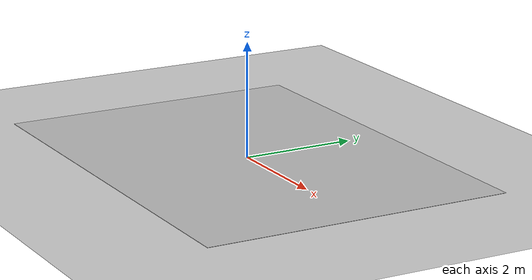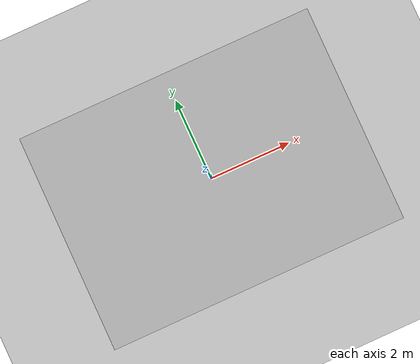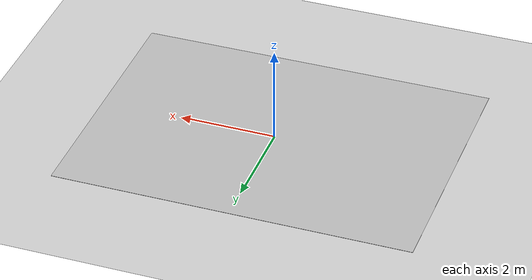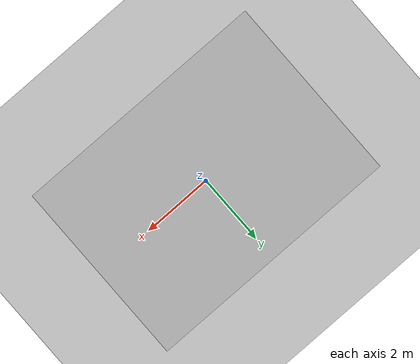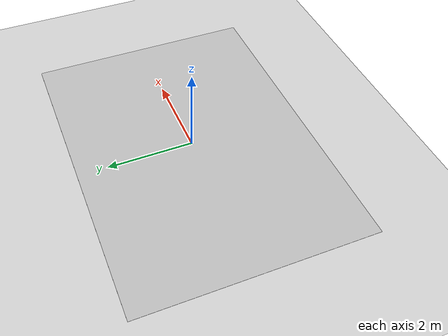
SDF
<sdf version="1.7">
 <world name="default">
  <physics name="default_physics" default="0" type="ode">
   <max_step_size>0.001</max_step_size>
   <real_time_factor>1</real_time_factor>
   <real_time_update_rate>1000</real_time_update_rate>
   <ode>
    <solver>
     <type>quick</type>
     <iters>50</iters>
     <sor>1</sor>
     <use_dynamic_moi_rescaling>0</use_dynamic_moi_rescaling>
    </solver>
    <constraints>
     <cfm>0</cfm>
     <erp>0.2</erp>
     <contact_max_correcting_vel>100</contact_max_correcting_vel>
     <contact_surface_layer>0.001</contact_surface_layer>
    </constraints>
   </ode>
  </physics>
  <model name="ground_plane">
   <static>1</static>
   <link name="link">
    <collision name="collision">
     <geometry><plane><normal>0 0 1</normal><size>100 100</size></plane></geometry>
     <surface><friction><ode><mu>100</mu><mu2>50</mu2></ode></friction></surface>
    </collision>
    <visual name="visual">
     <cast_shadows>0</cast_shadows>
     <geometry><plane><normal>0 0 1</normal><size>100 100</size></plane></geometry>
     <material>
      <script><uri>file://media/materials/scripts/gazebo.material</uri><name>Gazebo/Grey</name></script>
     </material>
    </visual>
   </link>
  </model>
  <light name="sun" type="directional">
   <pose>0 0 10 0 -0 0</pose>
   <diffuse>0.8 0.8 0.8 1</diffuse>
   <specular>0.2 0.2 0.2 1</specular>
   <attenuation>
    <range>1000</range>
    <constant>0.9</constant>
    <linear>0.01</linear>
    <quadratic>0.001</quadratic>
   </attenuation>
   <direction>-0.5 0.1 -0.9</direction>
   <spot><inner_angle>0</inner_angle><outer_angle>0</outer_angle><falloff>0</falloff></spot>
  </light>
  <gravity>0 0 -9.8</gravity>
  <magnetic_field>6e-06 2.3e-05 -4.2e-05</magnetic_field>
  <atmosphere type="adiabatic"/>
  <scene><ambient>0.4 0.4 0.4 1</ambient><background>0.7 0.7 0.7 1</background><shadows>1</shadows></scene>
  <audio><device>default</device></audio>
  <spherical_coordinates>
   <surface_model>EARTH_WGS84</surface_model>
   <latitude_deg>0</latitude_deg>
   <longitude_deg>0</longitude_deg>
   <elevation>0</elevation>
   <heading_deg>0</heading_deg>
  </spherical_coordinates>
  <model name="grass">
   <static>1</static>
   <link name="field">
    <pose>0 0 0.01 0 -0 0</pose>
    <collision name="collision">
     <geometry><plane><normal>0 0 1</normal><size>7.4 5.4</size></plane></geometry>
     <surface><friction><ode><mu>100</mu><mu2>50</mu2></ode></friction></surface>
    </collision>
    <visual name="carpet">
     <cast_shadows>0</cast_shadows>
     <geometry><plane><normal>0 0 1</normal><size>7.4 5.4</size></plane></geometry>
     <material>
      <script>
       <uri>model://tortoise/env/scripts/</uri>
       <uri>model://tortoise/env/textures/</uri>
       <name>grass/Carpet</name>
      </script>
     </material>
    </visual>
   </link>
  </model>
 </world>
</sdf>
